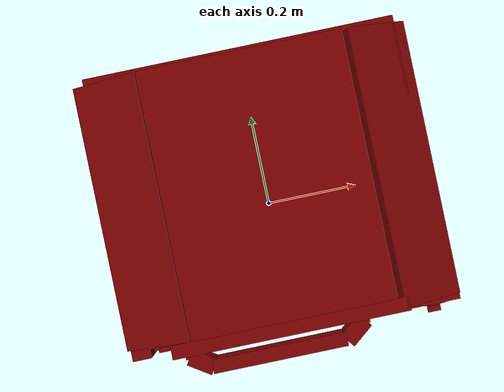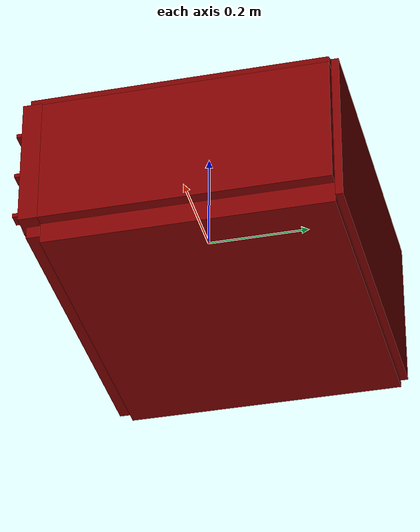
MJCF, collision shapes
<?xml version='1.0' encoding='UTF-8'?>
<mujoco model="model">
  <option timestep="0.002" gravity="0.0 0.0 -9.81"/>
  <compiler angle="radian"/>
  <asset>
    <mesh file="visuals/door.obj" name="door_vis"/>
    <mesh file="visuals/knob_function.obj" name="knob_function_vis"/>
    <mesh file="visuals/knob_temp.obj" name="knob_temp_vis"/>
    <mesh file="visuals/knob_time.obj" name="knob_time_vis"/>
    <mesh file="visuals/rack0.obj" name="rack0_vis"/>
    <mesh file="visuals/Body001.obj" name="Body001_vis"/>
    <mesh file="visuals/tray0.obj" name="tray0_vis"/>
    <mesh file="visuals/window.obj" name="window_vis"/>
    <texture file="visuals/T_BC001.png" name="Body001_material" type="2d"/>
    <material name="Body001_material" rgba="1 1 1 1.0" texture="Body001_material" shininess="0.02512328028678894" specular="1.2"/>
    <texture file="visuals/T_BC001.png" name="door_material" type="2d"/>
    <material name="door_material" rgba="1 1 1 1.0" texture="door_material" shininess="0.0512328028678894" specular="1.5"/>
    <material name="window_material" rgba="0.07665680348873138 0.07665680348873138 0.07665680348873138 0.800000011920929" shininess="0.2512328028678894" specular="0.3103448502657381"/>
    <texture file="visuals/T_BC001.png" name="knob_function_material" type="2d"/>
    <material name="knob_function_material" rgba="1 1 1 1.0" texture="knob_function_material" shininess="0.2512328028678894" specular="0.3103448502657381"/>
    <texture file="visuals/T_BC001.png" name="knob_temp_material" type="2d"/>
    <material name="knob_temp_material" rgba="1 1 1 1.0" texture="knob_temp_material" shininess="0.2512328028678894" specular="0.3103448502657381"/>
    <texture file="visuals/T_BC001.png" name="knob_time_material" type="2d"/>
    <material name="knob_time_material" rgba="1 1 1 1.0" texture="knob_time_material" shininess="0.2512328028678894" specular="0.3103448502657381"/>
    <texture file="visuals/T_BC001.png" name="rack0_material" type="2d"/>
    <material name="rack0_material" rgba="1 1 1 1.0" texture="rack0_material" shininess="0.2512328028678894" specular="2"/>
    <texture file="visuals/T_BC001.png" name="tray0_material" type="2d"/>
    <material name="tray0_material" rgba="1 1 1 1.0" texture="tray0_material" shininess="0.2512328028678894" specular="2"/>
  </asset>
  <default>
    <default class="visual">
      <geom conaffinity="0" contype="0" group="1" type="mesh"/>
    </default>
    <default class="collision">
      <geom group="0" rgba="0.5 0 0 0.5"/>
    </default>
    <default class="spawn">
      <geom group="0" rgba="1 1 1 0.5" contype="0" conaffinity="0"/>
      <site group="0" rgba="1 1 1 0.5"/>
    </default>
    <default class="region">
      <geom group="1" conaffinity="0" contype="0" rgba="0 1 0 0"/>
    </default>
  </default>
  <worldbody>
    <body>
      <body name="object">
        <geom mesh="Body001_vis" type="mesh" solimp="0.998 0.998 0.001" solref="0.001 1" friction="0.95 0.3 0.1" class="visual" material="Body001_material"/>
        <geom class="collision" type="cylinder" pos="0.30132563 -0.27318491 -0.10037589" size="0.036673109978437424 0.006221333518624306" quat="0.7071067094802856 0.7071068286895752 0.0 0.0"/>
        <geom class="collision" type="cylinder" pos="0.30132563 -0.27318491 -0.00871397" size="0.036673109978437424 0.006221333518624306" quat="0.7071067094802856 0.7071068286895752 0.0 0.0"/>
        <geom class="collision" type="cylinder" pos="0.30151488 -0.27318491 0.08430188" size="0.036673109978437424 0.006221333518624306" quat="0.7071067094802856 0.7071068286895752 0.0 0.0"/>
        <geom class="collision" type="box" pos="-0.32127168 0.03757395 -0.01525249" size="0.029950326308608055 0.27683815360069275 0.1338956654071808" quat="1.0 0.0 0.0 0.0"/>
        <geom class="collision" type="box" pos="0.00152694 0.03757395 0.15675913" size="0.2118200957775116 0.27683815360069275 0.026425858959555626" quat="1.0 0.0 0.0 0.0"/>
        <geom class="collision" type="box" pos="-0.27433439 0.03757395 0.14046856" size="0.022558633238077164 0.27683815360069275 0.07121719419956207" quat="0.59475177526474 -0.0 -0.803909420967102 -0.0"/>
        <geom class="collision" type="box" pos="0.28173239 0.02605738 0.14243463" size="0.017679747194051743 0.2883547246456146 0.06703846156597137" quat="0.5620537400245667 -4.3291530360534125e-09 0.8271007537841797 3.20282000920713e-09"/>
        <geom class="collision" type="box" pos="0.28621606 0.03757395 -0.00858778" size="0.06500669568777084 0.27683815360069275 0.130403071641922" quat="1.0 0.0 0.0 0.0"/>
        <geom class="collision" type="box" pos="0.00147445 0.03757395 -0.15399231" size="0.3271647095680237 0.27683815360069275 0.02687733620405197" quat="1.0 0.0 0.0 0.0"/>
        <geom class="collision" type="box" pos="0.00147445 0.24429990 -0.01070904" size="0.3271647095680237 0.08464127033948898 0.15496349334716797" quat="1.0 0.0 0.0 0.0"/>
        <geom class="collision" type="box" pos="0.29608477 -0.25801635 -0.00729232" size="0.0551380030810833 0.01869085803627968 0.13169851899147034" quat="1.0 0.0 0.0 0.0"/>
        <geom class="collision" type="box" pos="-0.00872070 -0.25371769 0.16598970" size="0.24454858899116516 0.014392198994755745 0.015185322612524033" quat="1.0 0.0 0.0 0.0"/>
        <geom class="collision" type="box" pos="-0.32852106 -0.25371769 -0.01649707" size="0.020201126113533974 0.014392198994755745 0.1319458931684494" quat="1.0 0.0 0.0 0.0"/>
        <geom class="collision" type="box" pos="0.00147445 -0.25312878 -0.15493504" size="0.3271647095680237 0.012976379133760929 0.012147435918450356" quat="1.0 0.0 0.0 0.0"/>
        <geom class="collision" type="box" pos="-0.30013095 0.03757395 0.03608343" size="0.01747884228825569 0.27683815360069275 0.013631334528326988" quat="1.0 0.0 0.0 0.0"/>
        <geom class="collision" type="box" pos="-0.30013095 0.03757395 -0.09287605" size="0.01747884228825569 0.27683815360069275 0.013631334528326988" quat="1.0 0.0 0.0 0.0"/>
        <geom class="collision" type="box" pos="0.23055116 0.03757395 0.03608343" size="0.01747884228825569 0.27683815360069275 0.013631334528326988" quat="1.0 0.0 0.0 0.0"/>
        <geom class="collision" type="box" pos="0.23055116 0.03757395 -0.09298142" size="0.01747884228825569 0.27683815360069275 0.013631334528326988" quat="1.0 0.0 0.0 0.0"/>
        <body name="door">
          <joint axis="1.0 0.0 0.0" pos="-0.04084404 -0.25347959 -0.13252245" limited="true" name="door_joint" range="0.0 1.3707963267948966" type="hinge" damping="1" frictionloss="1" armature=".01" stiffness="0.25" springref="-0.5"/>
          <geom mesh="door_vis" type="mesh" solimp="0.998 0.998 0.001" solref="0.001 1" friction="0.95 0.3 0.1" class="visual" material="door_material"/>
          <geom class="collision" type="box" pos="-0.03503584 -0.25393619 -0.11216123" size="0.2677095830440521 0.005871211178600788 0.016185365617275238" quat="1.0 0.0 0.0 0.0"/>
          <geom class="collision" type="box" pos="-0.03503539 -0.25252807 0.11380075" size="0.24922239780426025 0.004463052377104759 0.020792121067643166" quat="1.0 0.0 0.0 0.0"/>
          <geom class="collision" type="box" pos="-0.27960547 -0.25305763 0.00160675" size="0.023087654262781143 0.004992608912289143 0.09758260101079941" quat="1.0 0.0 0.0 0.0"/>
          <geom class="collision" type="box" pos="0.20860977 -0.25311735 0.00160675" size="0.02386791631579399 0.0050523541867733 0.09758260101079941" quat="1.0 0.0 0.0 0.0"/>
          <geom class="collision" type="box" pos="-0.04183954 -0.31443895 0.08944080" size="0.1453966349363327 0.014990800060331821 0.01897290349006653" quat="1.0 0.0 0.0 0.0" name="door_handle_main"/>
          <geom class="collision" type="box" pos="0.14208051 -0.27397902 0.08916392" size="0.016352670267224312 0.015535363927483559 0.018696028739213943" quat="1.0 0.0 0.0 0.0"/>
          <geom class="collision" type="box" pos="0.12584461 -0.30108990 0.08917572" size="0.01860496588051319 0.02847464382648468 0.018707817420363426" quat="0.9017425775527954 0.0 -0.0 -0.4322735071182251"/>
          <geom class="collision" type="box" pos="-0.22347229 -0.27397902 0.08849825" size="0.016352670267224312 0.015535363927483559 0.018030351027846336" quat="1.0 0.0 0.0 0.0"/>
          <geom class="collision" type="box" pos="-0.20688975 -0.30051155 0.08885233" size="0.017758887261152267 0.028474638238549232 0.018384428694844246" quat="0.8793815970420837 0.0 0.0 0.47611770033836365"/>
          <geom class="collision" type="box" pos="-0.03197642 -0.25547183 0.00152960" size="0.2565442621707916 0.003886147867888212 0.12256436794996262" quat="1.0 0.0 0.0 0.0" name="door_main"/>
          <body name="window">
            <geom mesh="window_vis" type="mesh" solimp="0.998 0.998 0.001" solref="0.001 1" friction="0.95 0.3 0.1" class="visual" material="window_material"/>
            <geom class="collision" type="box" pos="-0.03655340 -0.25547183 -0.00146493" size="0.21532145142555237 0.0031549439299851656 0.0891408622264862" quat="1.0 0.0 0.0 0.0"/>
          </body>
        </body>
        <body name="knob_function">
          <joint axis="0.0 1.0 0.0" pos="0.30123590 -0.28883340 0.08435789" limited="true" name="knob_function_joint" range="0.0 4.71238898038469" type="hinge" damping="0.05" armature="1" frictionloss="0.75"/>
          <geom mesh="knob_function_vis" type="mesh" solimp="0.998 0.998 0.001" solref="0.001 1" friction="0.95 0.3 0.1" class="visual" material="knob_function_material"/>
          <geom class="collision" type="cylinder" pos="0.30139695 -0.28248750 0.08447860" size="0.01677282527089119 0.0019802239257842302" quat="0.7071067094802856 0.7071068286895752 0.0 0.0" friction="100 0.5 0.01"/>
          <geom class="collision" type="cylinder" pos="0.30139695 -0.28512339 0.08447860" size="0.01342045608907938 0.0019802239257842302" quat="0.7071067094802856 0.7071068286895752 0.0 0.0" friction="100 0.5 0.01"/>
          <geom class="collision" type="box" pos="0.30134631 -0.29320346 0.08444578" size="0.013565590605139732 0.006527393124997616 0.003859591670334339" quat="1.0 0.0 0.0 0.0" name="knob_function_main" friction="100 0.5 0.01"/>
        </body>
        <body name="knob_temp">
          <joint axis="0.0 1.0 0.0" pos="0.30123330 -0.28883340 -0.00877447" limited="true" name="knob_temp_joint" range="0.0 4.71238898038469" type="hinge" damping="0.05" armature="1" frictionloss="0.75"/>
          <geom mesh="knob_temp_vis" type="mesh" solimp="0.998 0.998 0.001" solref="0.001 1" friction="0.95 0.3 0.1" class="visual" material="knob_temp_material"/>
          <geom class="collision" type="cylinder" pos="0.30139695 -0.28248750 -0.00852278" size="0.01677282527089119 0.0019802239257842302" quat="0.7071067094802856 0.7071068286895752 0.0 0.0" friction="100 0.5 0.01"/>
          <geom class="collision" type="cylinder" pos="0.30139695 -0.28512339 -0.00852278" size="0.01342045608907938 0.0019802239257842302" quat="0.7071067094802856 0.7071068286895752 0.0 0.0" friction="100 0.5 0.01"/>
          <geom class="collision" type="box" pos="0.30141554 -0.29320346 -0.00887111" size="0.013565590605139732 0.006527393124997616 0.003859591670334339" quat="1.0 0.0 0.0 0.0" name="knob_temp_main" friction="100 0.5 0.01"/>
        </body>
        <body name="knob_time">
          <joint axis="0.0 1.0 0.0" pos="0.30123598 -0.28883340 -0.10049700" limited="true" name="knob_time_joint" range="0.0 4.71238898038469" type="hinge" damping="0.05" armature="1" frictionloss="0.75"/>
          <geom mesh="knob_time_vis" type="mesh" solimp="0.998 0.998 0.001" solref="0.001 1" friction="0.95 0.3 0.1" class="visual" material="knob_time_material"/>
          <geom class="collision" type="cylinder" pos="0.30132563 -0.28248750 -0.10037589" size="0.01677282527089119 0.0019802239257842302" quat="0.7071067094802856 0.7071068286895752 0.0 0.0" friction="100 0.5 0.01"/>
          <geom class="collision" type="cylinder" pos="0.30132563 -0.28512339 -0.10037589" size="0.01342045608907938 0.0019802239257842302" quat="0.7071067094802856 0.7071068286895752 0.0 0.0" friction="100 0.5 0.01"/>
          <geom class="collision" type="box" pos="0.30123598 -0.29320346 -0.10049700" size="0.013565590605139732 0.006527393124997616 0.003859591670334339" quat="1.0 0.0 0.0 0.0" name="knob_time_main" friction="100 0.5 0.01"/>
        </body>
        <body name="rack0">
          <geom class="region" name="reg_rack0" type="box" pos="-0.03230244500000001 -0.036611994999999994 -0.021300180000000002" size="0.242585655 0.188146835 0.041302"/>
          <joint axis="0.0 -1.0 0.0" pos="-0.03500512 -0.03828687 -0.06977848" limited="true" name="rack0_joint" range="0.0 0.13" type="slide" damping="1" frictionloss="1" armature=".01" stiffness="0.05"/>
          <geom mesh="rack0_vis" type="mesh" solimp="0.998 0.998 0.001" solref="0.001 1" friction="0.95 0.3 0.1" class="visual" material="rack0_material"/>
          <geom class="collision" type="box" pos="-0.03427458 -0.03822185 -0.06312018" size="0.2520999014377594 0.19143888354301453 0.0011830365983769298" quat="1.0 0.0 0.0 0.0"/>
          <geom class="collision" type="box" pos="-0.28784879 -0.03977180 -0.07103766" size="0.0011830533621832728 0.16682182252407074 0.0067345560528337955" quat="1.0 0.0 0.0 0.0"/>
          <geom class="collision" type="box" pos="0.21792584 -0.03977180 -0.07121588" size="0.0011830510338768363 0.16682152450084686 0.006734546739608049" quat="1.0 0.0 0.0 0.0"/>
        </body>
        <body name="tray0">
          <geom class="region" name="reg_tray0" type="box" pos="-0.03431461999999999 -0.040134945 0.078422395" size="0.19216089 0.10570717499999999 0.050437335"/>
          <joint axis="0.0 -1.0 0.0" pos="-0.03477414 -0.03985726 0.03933349" limited="true" name="tray0_joint" range="0.0 0.13" type="slide" damping="1" frictionloss="1" armature=".01" stiffness="0.05"/>
          <geom mesh="tray0_vis" type="mesh" solimp="0.998 0.998 0.001" solref="0.001 1" friction="0.95 0.3 0.1" class="visual" material="tray0_material"/>
          <geom class="collision" type="box" pos="-0.03477416 -0.03985728 0.02494753" size="0.19876432418823242 0.11329048126935959 0.003751558717340231" quat="1.0 0.0 0.0 0.0"/>
          <geom class="collision" type="box" pos="-0.03522526 -0.16504119 0.04209062" size="0.20513050258159637 0.019968902692198753 0.004110472742468119" quat="0.40984898805618286 0.912153422832489 0.0 0.0"/>
          <geom class="collision" type="box" pos="-0.03681375 -0.19335844 0.05486340" size="0.22429102659225464 0.013571429066359997 0.003666766919195652" quat="1.0 0.0 0.0 0.0"/>
          <geom class="collision" type="box" pos="-0.03588159 0.08509397 0.04139281" size="0.20634128153324127 0.019968904554843903 0.003059636102989316" quat="0.4098513722419739 -0.9121522903442383 -0.0 0.0"/>
          <geom class="collision" type="box" pos="-0.03576494 0.11303262 0.05456449" size="0.22803141176700592 0.013571410439908504 0.0033678472973406315" quat="1.0 0.0 0.0 0.0"/>
          <geom class="collision" type="box" pos="-0.24594431 -0.03929382 0.04228798" size="0.12153718620538712 0.019968904554843903 0.0042864130809903145" quat="0.277350515127182 -0.6504433751106262 -0.6504434943199158 0.2773505747318268"/>
          <geom class="collision" type="box" pos="-0.27472155 -0.04003141 0.05496752" size="0.013571400195360184 0.14400987327098846 0.0039155930280685425" quat="1.0 0.0 0.0 0.0"/>
          <geom class="collision" type="box" pos="0.17673854 -0.03929382 0.04180624" size="0.12153718620538712 0.019968906417489052 0.0035905642434954643" quat="0.27735045552253723 0.650443434715271 0.6504434943199158 0.2773504853248596"/>
          <geom class="collision" type="box" pos="0.20508533 -0.04003141 0.05435852" size="0.013571380637586117 0.14400972425937653 0.0033065902534872293" quat="1.0 0.0 0.0 0.0"/>
        </body>
        <geom class="region" name="reg_main" type="box" pos="3.6999999999953737e-07 0.024617705000000017 1.7500000000503224e-07" size="0.35222240000000005 0.30532343500000003 0.184184805"/>
      </body>
    </body>
  </worldbody>
  <actuator>
    <motor name="door_joint_actuator" joint="door_joint" gear="30"/>
    <motor name="knob_function_joint_actuator" joint="knob_function_joint" gear="10"/>
    <motor name="knob_temp_joint_actuator" joint="knob_temp_joint" gear="10"/>
    <motor name="knob_time_joint_actuator" joint="knob_time_joint" gear="10"/>
    <motor name="rack0_joint_actuator" joint="rack0_joint" gear="10"/>
    <motor name="tray0_joint_actuator" joint="tray0_joint" gear="30"/>
  </actuator>
</mujoco>
